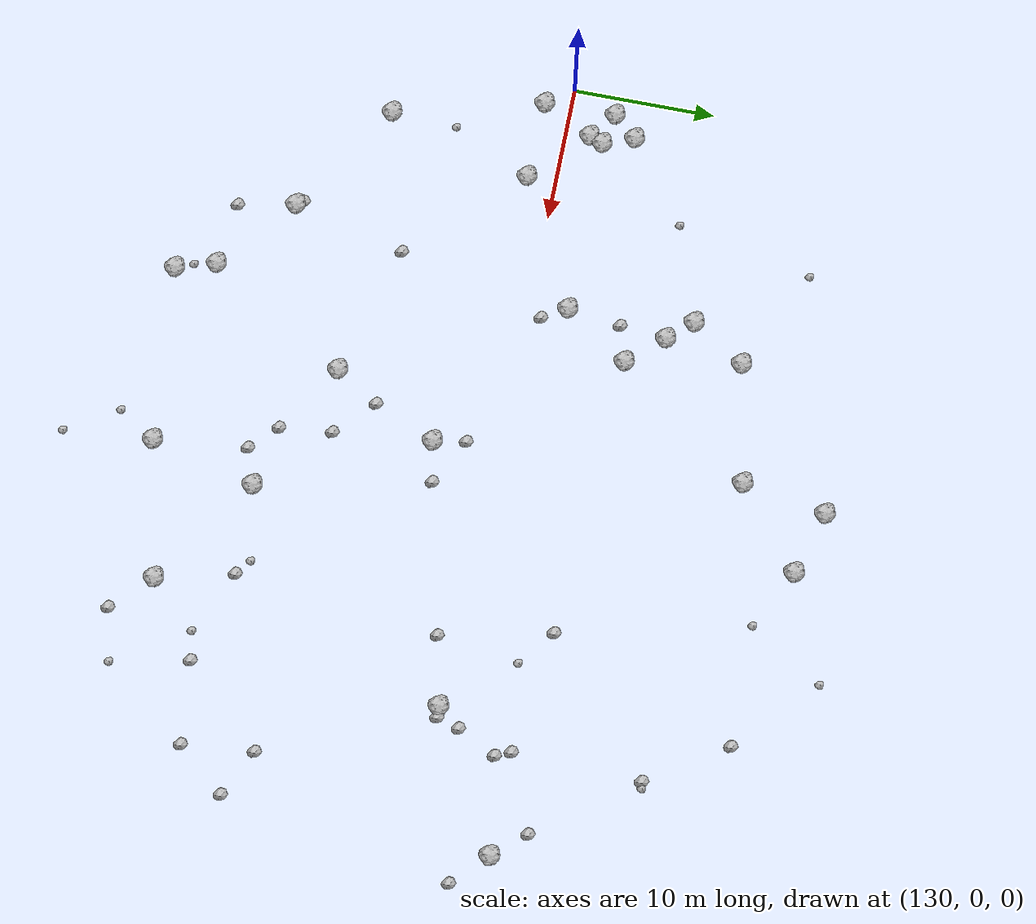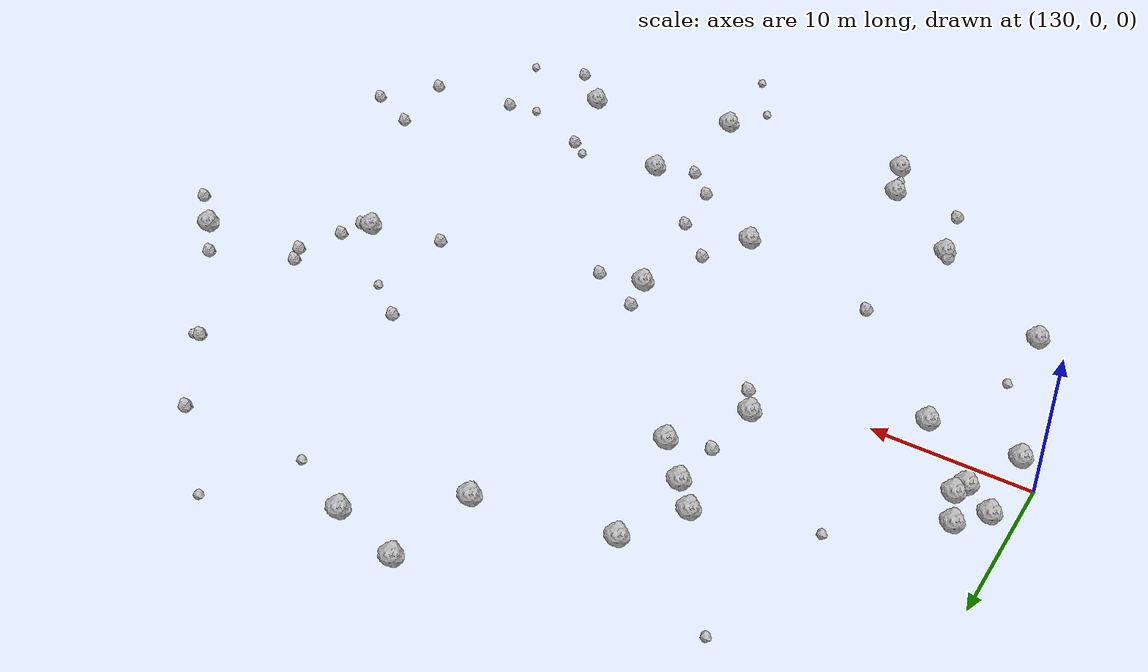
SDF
<sdf version="1.6">
 <world name="default">
  <include><uri>model://sun</uri></include>
  <model name="rock1_4_2">
   <include><uri>model://rock1</uri><pose>149.75024318189185 7.203098128505317 0.5 0 0 0</pose></include>
  </model>
  <model name="rock1_4_3">
   <include><uri>model://rock1</uri><pose>186.2176960225306 4.883850176521527 0.5 0 0 0</pose></include>
  </model>
  <model name="rock1_4_4">
   <include><uri>model://rock1</uri><pose>131.55175794020587 -1.89649877630778 0.5 0 0 0</pose></include>
  </model>
  <model name="rock1_4_5">
   <include><uri>model://rock1</uri><pose>146.64857336021174 2.6329214069068314 0.5 0 0 0</pose></include>
  </model>
  <model name="rock1_4_6">
   <include><uri>model://rock1</uri><pose>161.75585136274466 -23.517799591339468 0.5 0 0 0</pose></include>
  </model>
  <model name="rock1_4_7">
   <include><uri>model://rock1</uri><pose>134.33968188027143 -12.324897261430998 0.5 0 0 0</pose></include>
  </model>
  <model name="rock1_4_8">
   <include><uri>model://rock1</uri><pose>154.21788062210737 -12.096877768897116 0.5 0 0 0</pose></include>
  </model>
  <model name="rock1_4_9">
   <include><uri>model://rock1</uri><pose>137.33848757792208 -2.0471750361297794 0.5 0 0 0</pose></include>
  </model>
  <model name="rock1_4_10">
   <include><uri>model://rock1</uri><pose>158.06314756740886 22.683503617301696 0.5 0 0 0</pose></include>
  </model>
  <model name="rock1_4_11">
   <include><uri>model://rock1</uri><pose>158.09517836866846 -4.646408886440433 0.5 0 0 0</pose></include>
  </model>
  <model name="rock1_4_12">
   <include><uri>model://rock1</uri><pose>171.53062831345613 -21.25201764133564 0.5 0 0 0</pose></include>
  </model>
  <model name="rock1_4_13">
   <include><uri>model://rock1</uri><pose>148.33626811504797 15.188942977753328 0.5 0 0 0</pose></include>
  </model>
  <model name="rock1_4_14">
   <include><uri>model://rock1</uri><pose>147.5019677023515 9.700441127726712 0.5 0 0 0</pose></include>
  </model>
  <model name="rock1_4_15">
   <include><uri>model://rock1</uri><pose>142.62730490301848 -17.524780811006785 0.5 0 0 0</pose></include>
  </model>
  <model name="rock1_4_16">
   <include><uri>model://rock1</uri><pose>163.65873404501463 -16.104391116894856 0.5 0 0 0</pose></include>
  </model>
  <model name="rock1_4_17">
   <include><uri>model://rock1</uri><pose>148.0873034047942 -22.01202028069256 0.5 0 0 0</pose></include>
  </model>
  <model name="rock1_4_18">
   <include><uri>model://rock1</uri><pose>133.4342886510026 1.6886949058926284 0.5 0 0 0</pose></include>
  </model>
  <model name="rock1_4_19">
   <include><uri>model://rock1</uri><pose>133.8202318914158 2.6389940414123743 0.5 0 0 0</pose></include>
  </model>
  <model name="rock1_4_20">
   <include><uri>model://rock1</uri><pose>162.65885386095138 21.34545081897211 0.5 0 0 0</pose></include>
  </model>
  <model name="rock1_4_21">
   <include><uri>model://rock1</uri><pose>148.96185697994264 -24.79982935047073 0.5 0 0 0</pose></include>
  </model>
  <model name="rock1_4_22">
   <include><uri>model://rock1</uri><pose>145.9354643003921 11.420165216209199 0.5 0 0 0</pose></include>
  </model>
  <model name="rock1_4_23">
   <include><uri>model://rock1</uri><pose>176.68786311496717 -0.47904873142184456 0.5 0 0 0</pose></include>
  </model>
  <model name="rock1_4_24">
   <include><uri>model://rock1</uri><pose>131.48320711178425 3.1514476122660326 0.5 0 0 0</pose></include>
  </model>
  <model name="rock1_4_25">
   <include><uri>model://rock1</uri><pose>133.00482444144293 4.824998637740293 0.5 0 0 0</pose></include>
  </model>
  <model name="rock1_4_26">
   <include><uri>model://rock1</uri><pose>156.95716131687155 16.790916796286822 0.5 0 0 0</pose></include>
  </model>
  <model name="rock2_4_0">
   <include><uri>model://rock2</uri><pose>156.10240834560784 -8.988632447919638 0.3 0 0 0</pose></include>
  </model>
  <model name="rock2_4_1">
   <include><uri>model://rock2</uri><pose>159.13469428807517 -15.18310593443487 0.3 0 0 0</pose></include>
  </model>
  <model name="rock2_4_2">
   <include><uri>model://rock2</uri><pose>158.73969235369373 -11.510904021932976 0.3 0 0 0</pose></include>
  </model>
  <model name="rock2_4_3">
   <include><uri>model://rock2</uri><pose>188.538981973117 2.614128982916256 0.3 0 0 0</pose></include>
  </model>
  <model name="rock2_4_4">
   <include><uri>model://rock2</uri><pose>147.58411292160832 0.9438832758512845 0.3 0 0 0</pose></include>
  </model>
  <model name="rock2_4_5">
   <include><uri>model://rock2</uri><pose>174.13757668751714 -23.829397309514622 0.3 0 0 0</pose></include>
  </model>
  <model name="rock2_4_6">
   <include><uri>model://rock2</uri><pose>185.52866493517325 -13.532850014335327 0.3 0 0 0</pose></include>
  </model>
  <model name="rock2_4_7">
   <include><uri>model://rock2</uri><pose>177.398334436638 -0.41730491776567646 0.3 0 0 0</pose></include>
  </model>
  <model name="rock2_4_8">
   <include><uri>model://rock2</uri><pose>143.35422981658448 -21.500900517384604 0.3 0 0 0</pose></include>
  </model>
  <model name="rock2_4_9">
   <include><uri>model://rock2</uri><pose>178.83636426509088 4.953009822538625 0.3 0 0 0</pose></include>
  </model>
  <model name="rock2_4_10">
   <include><uri>model://rock2</uri><pose>179.3020696447456 3.8826458092297997 0.3 0 0 0</pose></include>
  </model>
  <model name="rock2_4_11">
   <include><uri>model://rock2</uri><pose>182.63255465603618 -16.903410502073204 0.3 0 0 0</pose></include>
  </model>
  <model name="rock2_4_12">
   <include><uri>model://rock2</uri><pose>179.13231051522695 13.887478067638867 0.3 0 0 0</pose></include>
  </model>
  <model name="rock2_4_13">
   <include><uri>model://rock2</uri><pose>160.98481877940856 -16.970463524879456 0.3 0 0 0</pose></include>
  </model>
  <model name="rock2_4_14">
   <include><uri>model://rock2</uri><pose>157.62540849920435 -2.342322452155983 0.3 0 0 0</pose></include>
  </model>
  <model name="rock2_4_15">
   <include><uri>model://rock2</uri><pose>175.56619485507503 19.304426898390084 0.3 0 0 0</pose></include>
  </model>
  <model name="rock2_4_16">
   <include><uri>model://rock2</uri><pose>160.96983409265002 -4.062949732313619 0.3 0 0 0</pose></include>
  </model>
  <model name="rock2_4_17">
   <include><uri>model://rock2</uri><pose>177.89314884603402 1.1520108154519129 0.3 0 0 0</pose></include>
  </model>
  <model name="rock2_4_18">
   <include><uri>model://rock2</uri><pose>144.61441047498639 -9.518727680088723 0.3 0 0 0</pose></include>
  </model>
  <model name="rock2_4_19">
   <include><uri>model://rock2</uri><pose>184.20343777487136 7.1220533588003505 0.3 0 0 0</pose></include>
  </model>
  <model name="rock2_4_20">
   <include><uri>model://rock2</uri><pose>176.73950181163616 -17.530849320317156 0.3 0 0 0</pose></include>
  </model>
  <model name="rock2_4_21">
   <include><uri>model://rock2</uri><pose>182.17603547306572 -11.931719099861322 0.3 0 0 0</pose></include>
  </model>
  <model name="rock2_4_22">
   <include><uri>model://rock2</uri><pose>170.10287322862501 -15.870808934538452 0.3 0 0 0</pose></include>
  </model>
  <model name="rock2_4_23">
   <include><uri>model://rock2</uri><pose>142.2218758233712 -17.035884835046424 0.3 0 0 0</pose></include>
  </model>
  <model name="rock2_4_24">
   <include><uri>model://rock2</uri><pose>171.731643354977 -1.5417106494758634 0.3 0 0 0</pose></include>
  </model>
  <model name="rock2_4_25">
   <include><uri>model://rock2</uri><pose>147.0982351260279 6.455669268864497 0.3 0 0 0</pose></include>
  </model>
  <model name="rock2_4_26">
   <include><uri>model://rock2</uri><pose>170.02538041395167 6.1838877327639565 0.3 0 0 0</pose></include>
  </model>
  <model name="rock3_4_0">
   <include><uri>model://rock3</uri><pose>166.85824144791593 19.225877718363563 0.2 0 0 0</pose></include>
  </model>
  <model name="rock3_4_1">
   <include><uri>model://rock3</uri><pose>148.33218948081458 -23.590199060553427 0.2 0 0 0</pose></include>
  </model>
  <model name="rock3_4_2">
   <include><uri>model://rock3</uri><pose>172.5761931322871 4.165072049021063 0.2 0 0 0</pose></include>
  </model>
  <model name="rock3_4_3">
   <include><uri>model://rock3</uri><pose>170.10651011928923 24.364487497428357 0.2 0 0 0</pose></include>
  </model>
  <model name="rock3_4_4">
   <include><uri>model://rock3</uri><pose>174.64782835777737 -17.95563870153301 0.2 0 0 0</pose></include>
  </model>
  <model name="rock3_4_5">
   <include><uri>model://rock3</uri><pose>138.80581184869615 9.121383598341367 0.2 0 0 0</pose></include>
  </model>
  <model name="rock3_4_6">
   <include><uri>model://rock3</uri><pose>134.4723514325222 -7.6784608516362205 0.2 0 0 0</pose></include>
  </model>
  <model name="rock3_4_7">
   <include><uri>model://rock3</uri><pose>159.95269290617225 -26.169629020932724 0.2 0 0 0</pose></include>
  </model>
  <model name="rock3_4_8">
   <include><uri>model://rock3</uri><pose>168.97926060813413 -15.086873974391434 0.2 0 0 0</pose></include>
  </model>
  <model name="rock3_4_9">
   <include><uri>model://rock3</uri><pose>162.18459850241268 -29.778697898385747 0.2 0 0 0</pose></include>
  </model>
  <model name="rock3_4_10">
   <include><uri>model://rock3</uri><pose>140.8731478824913 18.68605157761762 0.2 0 0 0</pose></include>
  </model>
  <model name="rock3_4_11">
   <include><uri>model://rock3</uri><pose>177.8733930704069 -22.967067858556547 0.2 0 0 0</pose></include>
  </model>
  <model name="rock3_4_12">
   <include><uri>model://rock3</uri><pose>179.58627816204296 13.933025020921676 0.2 0 0 0</pose></include>
  </model>
 </world>
</sdf>
